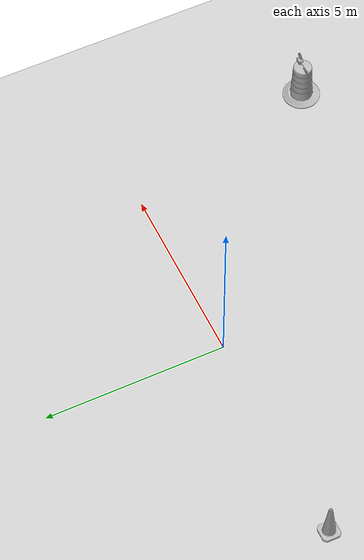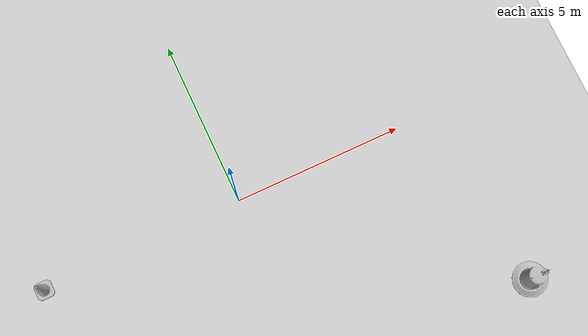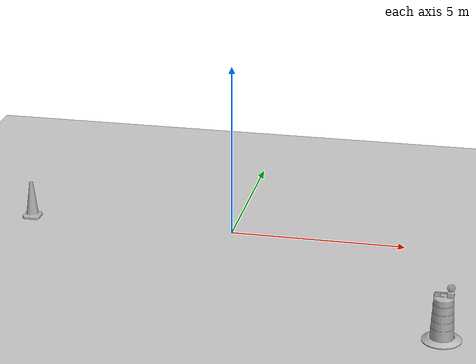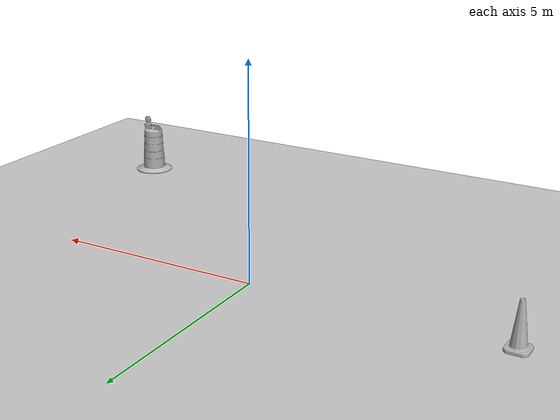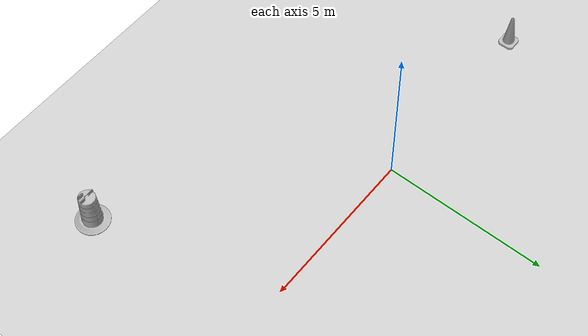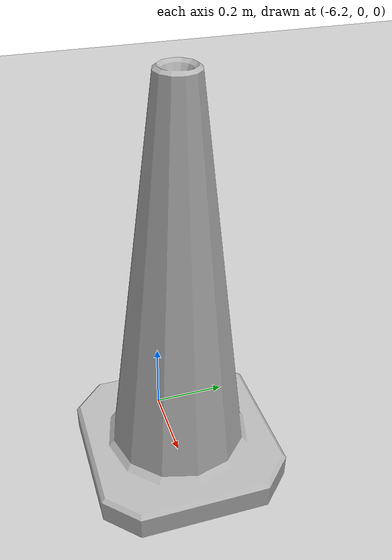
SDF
<sdf version="1.6">
 <world name="default">
  <light name="sun" type="directional">
   <pose>0 0 10 0 -0 0</pose>
   <diffuse>0.8 0.8 0.8 1</diffuse>
   <specular>0.2 0.2 0.2 1</specular>
   <attenuation>
    <range>1000</range>
    <constant>0.9</constant>
    <linear>0.01</linear>
    <quadratic>0.001</quadratic>
   </attenuation>
   <direction>-0.5 0.1 -0.9</direction>
  </light>
  <model name="ground_plane">
   <static>1</static>
   <link name="link">
    <collision name="collision">
     <geometry><plane><normal>0 0 1</normal><size>100 100</size></plane></geometry>
     <surface><friction><ode><mu>100</mu><mu2>50</mu2></ode></friction></surface>
    </collision>
    <visual name="visual">
     <cast_shadows>0</cast_shadows>
     <geometry><plane><normal>0 0 1</normal><size>100 100</size></plane></geometry>
     <material>
      <script><uri>file://media/materials/scripts/gazebo.material</uri><name>Gazebo/Grey</name></script>
     </material>
    </visual>
   </link>
  </model>
  <gravity>0 0 -9.8</gravity>
  <magnetic_field>6e-06 2.3e-05 -4.2e-05</magnetic_field>
  <atmosphere type="adiabatic"/>
  <physics name="default_physics" default="0" type="ode">
   <max_step_size>0.001</max_step_size>
   <real_time_factor>1</real_time_factor>
   <real_time_update_rate>1000</real_time_update_rate>
  </physics>
  <scene><ambient>0.4 0.4 0.4 1</ambient><background>0.7 0.7 0.7 1</background><shadows>1</shadows></scene>
  <audio><device>default</device></audio>
  <spherical_coordinates>
   <surface_model>EARTH_WGS84</surface_model>
   <latitude_deg>0</latitude_deg>
   <longitude_deg>0</longitude_deg>
   <elevation>0</elevation>
   <heading_deg>0</heading_deg>
  </spherical_coordinates>
  <model name="Construction Cone">
   <link name="link">
    <collision name="collision">
     <geometry>
      <mesh><scale>10 10 10</scale><uri>model://construction_cone/meshes/construction_cone.dae</uri></mesh>
     </geometry>
    </collision>
    <visual name="visual">
     <geometry>
      <mesh><scale>10 10 10</scale><uri>model://construction_cone/meshes/construction_cone.dae</uri></mesh>
     </geometry>
    </visual>
    <inertial>
     <inertia><ixx>1</ixx><ixy>0</ixy><ixz>0</ixz><iyy>1</iyy><iyz>0</iyz><izz>1</izz></inertia>
     <mass>1</mass>
    </inertial>
   </link>
   <pose>-6 0 -0 0 -1e-06 0</pose>
  </model>
  <model name="Construction Barrel">
   <link name="link">
    <inertial>
     <pose>0 0 0.4 0 -0 0</pose>
     <mass>500</mass>
     <inertia><ixx>51.2096</ixx><iyy>51.2096</iyy><izz>25</izz><ixy>0</ixy><ixz>0</ixz><iyz>0</iyz></inertia>
    </inertial>
    <collision name="collision">
     <geometry><mesh><uri>model://construction_barrel/meshes/construction_barrel.dae</uri></mesh></geometry>
    </collision>
    <visual name="visual">
     <geometry><mesh><uri>model://construction_barrel/meshes/construction_barrel.dae</uri></mesh></geometry>
    </visual>
   </link>
   <pose>6.5 -5.5 -2e-06 7e-06 -2e-06 -3e-06</pose>
  </model>
 </world>
</sdf>
